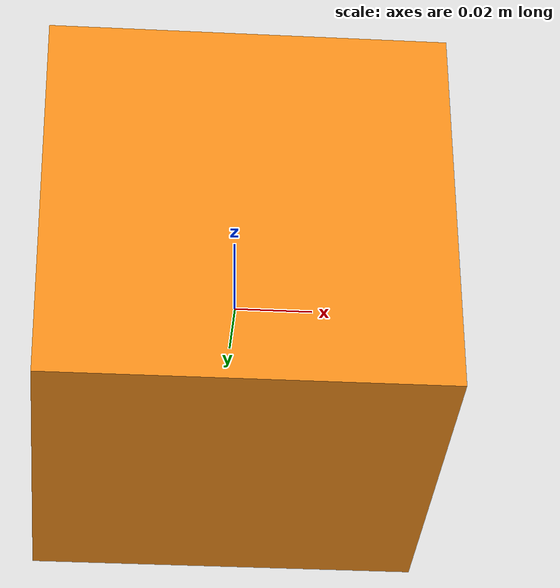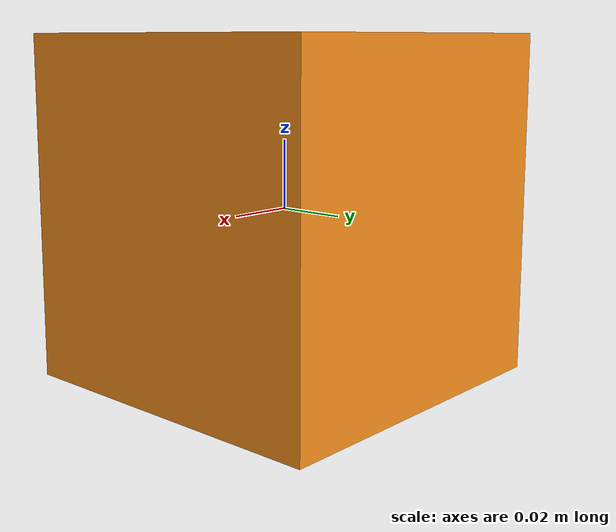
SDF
<?xml version='1.0'?>
<sdf version='1.6'>
  <model name='goal_box_2'>
    <pose frame=''>0 0 0 0 -0 -1.5708</pose>
    <link name='goal_box_2'>
      <visual name='goal_box_2'>
        <pose frame=''>0 0 0.0005 0 -0 0</pose>
        <geometry>
          <box>
            <size>0.1 0.1 0.1</size>
          </box>
        </geometry>
        <material>
          <script>
            <uri>file://media/materials/scripts/gazebo.material</uri>
            <name>Gazebo/Orange</name>
          </script>
          <ambient>1 0 0 1</ambient>
        </material>
      </visual>
      <pose frame=''>0 0 0 0 -0 0</pose>
    </link>
    <static>1</static>
  </model>
</sdf>
